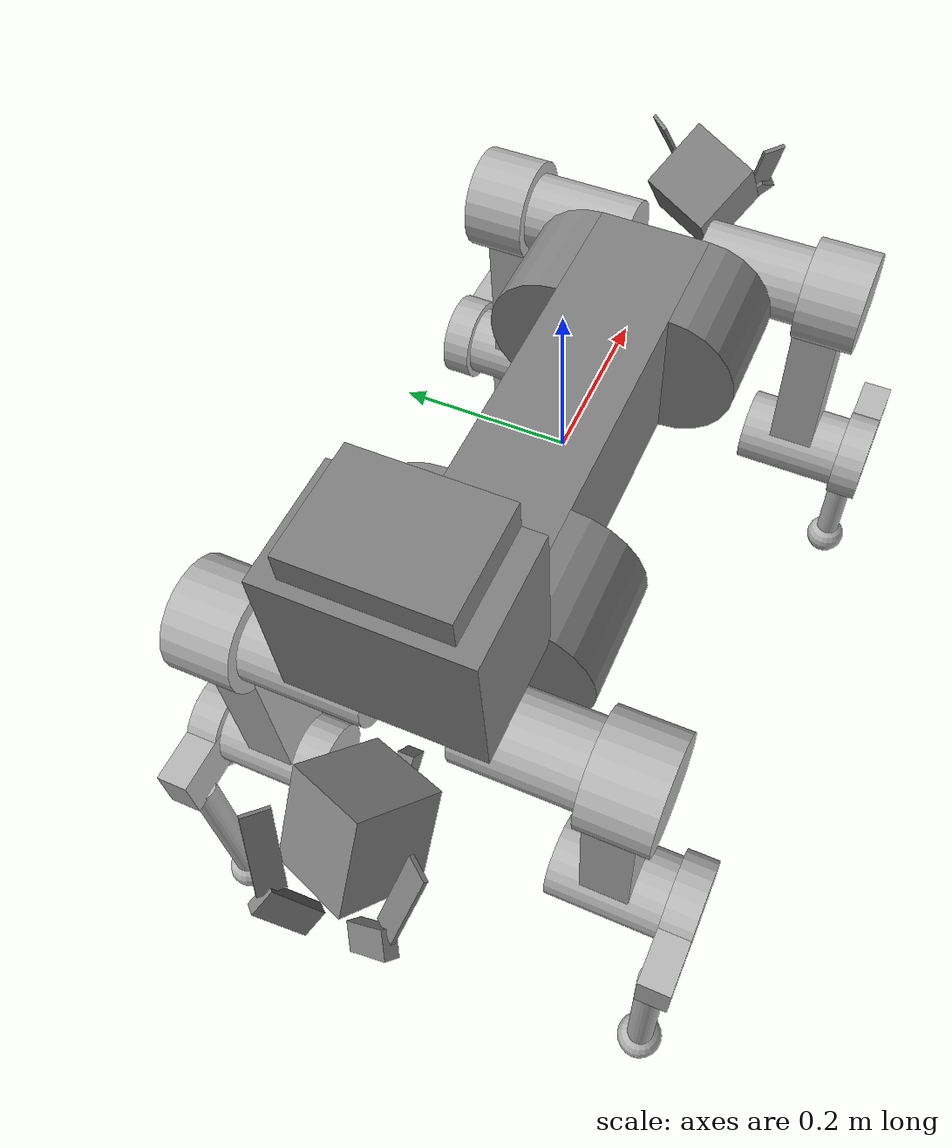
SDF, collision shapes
<?xml version='1.0' encoding='utf-8'?>
<sdf version="1.6">
  <model name="cerberus_anymal_c_sensor_config_1">
    <link name="base">
      <pose>0 0 0 0 -0 0</pose>
      <inertial>
        <pose>-0.02203 -0.000162 0.009216 0 -0 0</pose>
        <mass>29.23832</mass>
        <inertia>
          <ixx>0.236867</ixx>
          <ixy>0.00846724</ixy>
          <ixz>0.0854364</ixz>
          <iyy>2.06849</iyy>
          <iyz>-0.000253399</iyz>
          <izz>2.09006</izz>
        </inertia>
      </inertial>
      <collision name="base_collision">
        <pose>0 0 0 0 -0 0</pose>
        <geometry>
          <box>
            <size>0.58 0.14 0.18</size>
          </box>
        </geometry>
      </collision>
      <collision name="base_collision_1">
        <pose>0.2175 0.07 0 0 1.5708 0</pose>
        <geometry>
          <cylinder>
            <length>0.145</length>
            <radius>0.09</radius>
          </cylinder>
        </geometry>
      </collision>
      <collision name="base_collision_2">
        <pose>-0.2175 0.07 0 0 1.5708 0</pose>
        <geometry>
          <cylinder>
            <length>0.145</length>
            <radius>0.09</radius>
          </cylinder>
        </geometry>
      </collision>
      <collision name="base_collision_3">
        <pose>0.2175 -0.07 0 0 1.5708 0</pose>
        <geometry>
          <cylinder>
            <length>0.145</length>
            <radius>0.09</radius>
          </cylinder>
        </geometry>
      </collision>
      <collision name="base_collision_4">
        <pose>-0.2175 -0.07 0 0 1.5708 0</pose>
        <geometry>
          <cylinder>
            <length>0.145</length>
            <radius>0.09</radius>
          </cylinder>
        </geometry>
      </collision>
      <collision name="base_fixed_joint_lump__alphasense_mesh_collision_5">
        <pose>-0.349598 0 0.235 0 -0 0</pose>
        <geometry>
          <box>
            <size>0.128 0.165 0.098</size>
          </box>
        </geometry>
      </collision>
      <collision name="base_fixed_joint_lump__bpearl_front_collision_6">
        <pose>0.501547 0 -0.010053 -2.85388 -0.54666 -0.517507</pose>
        <geometry>
          <box>
            <size>0.1 0.1 0.11</size>
          </box>
        </geometry>
      </collision>
      <collision name="base_fixed_joint_lump__bpearl_front_protection_bars_collision_collision_7">
        <pose>0.438876 0 -0.07746 3.14159 0.893609 3.14159</pose>
        <geometry>
          <box>
            <size>0.03 0.018 0.1</size>
          </box>
        </geometry>
      </collision>
      <collision name="base_fixed_joint_lump__bpearl_front_protection_bars_collision_collision_8">
        <pose>0.50696 0 -0.118904 1e-06 1.52542 1e-06</pose>
        <geometry>
          <box>
            <size>0.03 0.017 0.068</size>
          </box>
        </geometry>
      </collision>
      <collision name="base_fixed_joint_lump__bpearl_front_protection_bars_collision_collision_9">
        <pose>0.559988 -0.068944 0.007343 -2.68278 -0.125844 -0.83529</pose>
        <geometry>
          <box>
            <size>0.03 0.005 0.1</size>
          </box>
        </geometry>
      </collision>
      <collision name="base_fixed_joint_lump__bpearl_front_protection_bars_collision_collision_10">
        <pose>0.58501 -0.044431 -0.064253 -2.61177 0.516776 -0.491692</pose>
        <geometry>
          <box>
            <size>0.03 0.016 0.068</size>
          </box>
        </geometry>
      </collision>
      <collision name="base_fixed_joint_lump__bpearl_front_protection_bars_collision_collision_11">
        <pose>0.556968 0.071877 0.005228 2.66301 -0.103127 0.880443</pose>
        <geometry>
          <box>
            <size>0.03 0.005 0.1</size>
          </box>
        </geometry>
      </collision>
      <collision name="base_fixed_joint_lump__bpearl_front_protection_bars_collision_collision_12">
        <pose>0.583063 0.046321 -0.065616 2.58142 0.531321 0.5194</pose>
        <geometry>
          <box>
            <size>0.03 0.016 0.068</size>
          </box>
        </geometry>
      </collision>
      <collision name="base_fixed_joint_lump__bpearl_rear_collision_13">
        <pose>-0.501547 -0 -0.010053 -2.85388 -0.54666 2.62409</pose>
        <geometry>
          <box>
            <size>0.1 0.1 0.11</size>
          </box>
        </geometry>
      </collision>
      <collision name="base_fixed_joint_lump__bpearl_rear_protection_bars_collision_collision_14">
        <pose>-0.438876 -0 -0.07746 3.14159 0.893609 -0</pose>
        <geometry>
          <box>
            <size>0.03 0.018 0.1</size>
          </box>
        </geometry>
      </collision>
      <collision name="base_fixed_joint_lump__bpearl_rear_protection_bars_collision_collision_15">
        <pose>-0.50696 -0 -0.118904 1e-06 1.52542 -3.14159</pose>
        <geometry>
          <box>
            <size>0.03 0.017 0.068</size>
          </box>
        </geometry>
      </collision>
      <collision name="base_fixed_joint_lump__bpearl_rear_protection_bars_collision_collision_16">
        <pose>-0.565632 0.062519 0.011295 -2.72553 -0.168473 2.39838</pose>
        <geometry>
          <box>
            <size>0.03 0.005 0.1</size>
          </box>
        </geometry>
      </collision>
      <collision name="base_fixed_joint_lump__bpearl_rear_protection_bars_collision_collision_17">
        <pose>-0.588647 0.04029 -0.061706 -2.67308 0.489917 2.70612</pose>
        <geometry>
          <box>
            <size>0.03 0.016 0.068</size>
          </box>
        </geometry>
      </collision>
      <collision name="base_fixed_joint_lump__bpearl_rear_protection_bars_collision_collision_18">
        <pose>-0.553825 -0.074613 0.003028 2.64433 -0.079552 -2.21655</pose>
        <geometry>
          <box>
            <size>0.03 0.005 0.1</size>
          </box>
        </geometry>
      </collision>
      <collision name="base_fixed_joint_lump__bpearl_rear_protection_bars_collision_collision_19">
        <pose>-0.581038 -0.048084 -0.067034 2.55129 0.546584 -2.59477</pose>
        <geometry>
          <box>
            <size>0.03 0.016 0.068</size>
          </box>
        </geometry>
      </collision>
      <collision name="base_fixed_joint_lump__perception_head_cage_collision_20">
        <pose>-0.355957 0 0.1614 0 -0 0</pose>
        <geometry>
          <box>
            <size>0.14151 0.21544 0.1768</size>
          </box>
        </geometry>
      </collision>
      <collision name="base_fixed_joint_lump__imu_link_collision_21">
        <pose>0.2488 0.00835 0.05128 0 -0 1.5708</pose>
        <geometry>
          <box>
            <size>0.024 0.024 0.01</size>
          </box>
        </geometry>
      </collision>
      <visual name="base_visual">
        <pose>0 0 0 0 -0 0</pose>
        <geometry>
          <mesh>
            <scale>1 1 1</scale>
            <uri>meshes/base.dae</uri>
          </mesh>
        </geometry>
      </visual>
      <visual name="base_fixed_joint_lump__LF_HAA_visual_1">
        <pose>0.2999 0.104 0 2.61799 -0 0</pose>
        <geometry>
          <mesh>
            <scale>1 1 1</scale>
            <uri>meshes/drive.dae</uri>
          </mesh>
        </geometry>
      </visual>
      <visual name="base_fixed_joint_lump__LH_HAA_visual_2">
        <pose>-0.2999 0.104 0 -2.61799 -0 3.14159</pose>
        <geometry>
          <mesh>
            <scale>1 1 1</scale>
            <uri>meshes/drive.dae</uri>
          </mesh>
        </geometry>
      </visual>
      <visual name="base_fixed_joint_lump__RF_HAA_visual_3">
        <pose>0.2999 -0.104 0 -2.61799 0 0</pose>
        <geometry>
          <mesh>
            <scale>1 1 1</scale>
            <uri>meshes/drive.dae</uri>
          </mesh>
        </geometry>
      </visual>
      <visual name="base_fixed_joint_lump__RH_HAA_visual_4">
        <pose>-0.2999 -0.104 0 2.61799 0 3.14159</pose>
        <geometry>
          <mesh>
            <scale>1 1 1</scale>
            <uri>meshes/drive.dae</uri>
          </mesh>
        </geometry>
      </visual>
      <visual name="base_fixed_joint_lump__battery_visual_5">
        <pose>0 0 0 0 -0 0</pose>
        <geometry>
          <mesh>
            <scale>1 1 1</scale>
            <uri>meshes/battery.dae</uri>
          </mesh>
        </geometry>
      </visual>
      <visual name="base_fixed_joint_lump__bottom_shell_visual_6">
        <pose>0 0 0 0 -0 0</pose>
        <geometry>
          <mesh>
            <scale>1 1 1</scale>
            <uri>meshes/bottom_shell.dae</uri>
          </mesh>
        </geometry>
      </visual>
      <visual name="base_fixed_joint_lump__handle_visual_7">
        <pose>0 0 0 0 -0 0</pose>
        <geometry>
          <mesh>
            <scale>1 1 1</scale>
            <uri>meshes/handle.dae</uri>
          </mesh>
        </geometry>
      </visual>
      <visual name="base_fixed_joint_lump__hatch_visual_8">
        <pose>0.116 0 0.073 0 -0 0</pose>
        <geometry>
          <mesh>
            <scale>1 1 1</scale>
            <uri>meshes/hatch.dae</uri>
          </mesh>
        </geometry>
      </visual>
      <visual name="base_fixed_joint_lump__remote_visual_9">
        <pose>0 0 0 0 -0 0</pose>
        <geometry>
          <mesh>
            <scale>1 1 1</scale>
            <uri>meshes/remote.dae</uri>
          </mesh>
        </geometry>
      </visual>
      <visual name="base_fixed_joint_lump__alphasense_mesh_visual_10">
        <pose>-0.364 0 0 0 -0 0</pose>
        <geometry>
          <mesh>
            <scale>0.001 0.001 0.001</scale>
            <uri>meshes/alphasense.stl</uri>
          </mesh>
        </geometry>
        <material>
          <ambient>0.5 0.5 0.5 1</ambient>
          <diffuse>0.5 0.5 0.5 1</diffuse>
          <specular>0.5 0.5 0.5 1</specular>
        </material>
      </visual>
      <visual name="base_fixed_joint_lump__bpearl_front_visual_11">
        <pose>0.47 0 0.035 -2.85388 -0.54666 -0.517507</pose>
        <geometry>
          <mesh>
            <scale>0.001 0.001 0.001</scale>
            <uri>meshes/rslidar_bpearl.stl</uri>
          </mesh>
        </geometry>
        <material>
          <ambient>0.5 0.5 0.5 1</ambient>
          <diffuse>0.5 0.5 0.5 1</diffuse>
          <specular>0.5 0.5 0.5 1</specular>
        </material>
      </visual>
      <visual name="base_fixed_joint_lump__bpearl_front_protection_bars_visual_12">
        <pose>0.414495 0 0 0 0 -3.14159</pose>
        <geometry>
          <mesh>
            <scale>0.001 0.001 0.001</scale>
            <uri>meshes/bpearl_protection_bars.stl</uri>
          </mesh>
        </geometry>
        <material>
          <ambient>0.5 0.5 0.5 1</ambient>
          <diffuse>0.5 0.5 0.5 1</diffuse>
          <specular>0.5 0.5 0.5 1</specular>
        </material>
      </visual>
      <visual name="base_fixed_joint_lump__bpearl_rear_visual_13">
        <pose>-0.47 0 0.035 -2.85388 -0.54666 2.62409</pose>
        <geometry>
          <mesh>
            <scale>0.001 0.001 0.001</scale>
            <uri>meshes/rslidar_bpearl.stl</uri>
          </mesh>
        </geometry>
        <material>
          <ambient>0.5 0.5 0.5 1</ambient>
          <diffuse>0.5 0.5 0.5 1</diffuse>
          <specular>0.5 0.5 0.5 1</specular>
        </material>
      </visual>
      <visual name="base_fixed_joint_lump__bpearl_rear_protection_bars_visual_14">
        <pose>-0.414495 0 0 0 -0 0</pose>
        <geometry>
          <mesh>
            <scale>0.001 0.001 0.001</scale>
            <uri>meshes/bpearl_protection_bars.stl</uri>
          </mesh>
        </geometry>
        <material>
          <ambient>0.5 0.5 0.5 1</ambient>
          <diffuse>0.5 0.5 0.5 1</diffuse>
          <specular>0.5 0.5 0.5 1</specular>
        </material>
      </visual>
      <visual name="base_fixed_joint_lump__perception_head_cage_visual_15">
        <pose>-0.364 0 0 0 -0 0</pose>
        <geometry>
          <mesh>
            <scale>0.001 0.001 0.001</scale>
            <uri>meshes/perception_head.stl</uri>
          </mesh>
        </geometry>
        <material>
          <ambient>0.5 0.5 0.5 1</ambient>
          <diffuse>0.5 0.5 0.5 1</diffuse>
          <specular>0.5 0.5 0.5 1</specular>
        </material>
      </visual>
      <visual name="base_fixed_joint_lump__lidar_visual_16">
        <pose>-0.364 0 0.1422 0 0 -1.5708</pose>
        <geometry>
          <mesh>
            <scale>1 1 1</scale>
            <uri>meshes/lidar.dae</uri>
          </mesh>
        </geometry>
      </visual>
      <visual name="base_fixed_joint_lump__top_shell_visual_17">
        <pose>0 0 0 0 -0 0</pose>
        <geometry>
          <mesh>
            <scale>1 1 1</scale>
            <uri>meshes/top_shell.dae</uri>
          </mesh>
        </geometry>
      </visual>
      <visual name="base_fixed_joint_lump__imu_link_visual_18">
        <pose>0.2488 0.00835 0.05128 0 -0 1.5708</pose>
        <geometry>
          <box>
            <size>0.024 0.024 0.01</size>
          </box>
        </geometry>
      </visual>
      <!-- Sensors -->
      <sensor name="imu_sensor" type="imu">
        <always_on>1</always_on>
        <update_rate>400</update_rate>
        <imu>
                    <enable_orientation>0</enable_orientation>
                    <angular_velocity>
                        <x>
                            <noise type="gaussian">
                                <mean>0</mean>
                                <stddev>0.009</stddev>
                                <bias_mean>0.00075</bias_mean>
                                <bias_stddev>0.005</bias_stddev>
                                <dynamic_bias_stddev>0.00002</dynamic_bias_stddev>
                                <dynamic_bias_correlation_time>400.0</dynamic_bias_correlation_time>
                                <precision>0.00025</precision>
                            </noise>
                        </x>
                        <y>
                            <noise type="gaussian">
                                <mean>0</mean>
                                <stddev>0.009</stddev>
                                <bias_mean>0.00075</bias_mean>
                                <bias_stddev>0.005</bias_stddev>
                                <dynamic_bias_stddev>0.00002</dynamic_bias_stddev>
                                <dynamic_bias_correlation_time>400.0</dynamic_bias_correlation_time>
                                <precision>0.00025</precision>
                            </noise>
                        </y>
                        <z>
                            <noise type="gaussian">
                                <mean>0</mean>
                                <stddev>0.009</stddev>
                                <bias_mean>0.00075</bias_mean>
                                <bias_stddev>0.005</bias_stddev>
                                <dynamic_bias_stddev>0.00002</dynamic_bias_stddev>
                                <dynamic_bias_correlation_time>400.0</dynamic_bias_correlation_time>
                                <precision>0.00025</precision>
                            </noise>
                        </z>
                    </angular_velocity>
                    <linear_acceleration>
                        <x>
                            <noise type="gaussian">
                                <mean>0</mean>
                                <stddev>0.021</stddev>
                                <bias_mean>0.05</bias_mean>
                                <bias_stddev>0.0075</bias_stddev>
                                <dynamic_bias_stddev>0.000375</dynamic_bias_stddev>
                                <dynamic_bias_correlation_time>175.0</dynamic_bias_correlation_time>
                                <precision>0.005</precision>
                            </noise>
                        </x>
                        <y>
                            <noise type="gaussian">
                                <mean>0</mean>
                                <stddev>0.021</stddev>
                                <bias_mean>0.05</bias_mean>
                                <bias_stddev>0.0075</bias_stddev>
                                <dynamic_bias_stddev>0.000375</dynamic_bias_stddev>
                                <dynamic_bias_correlation_time>175.0</dynamic_bias_correlation_time>
                                <precision>0.005</precision>
                            </noise>
                        </y>
                        <z>
                            <noise type="gaussian">
                                <mean>0</mean>
                                <stddev>0.021</stddev>
                                <bias_mean>0.05</bias_mean>
                                <bias_stddev>0.0075</bias_stddev>
                                <dynamic_bias_stddev>0.000375</dynamic_bias_stddev>
                                <dynamic_bias_correlation_time>175.0</dynamic_bias_correlation_time>
                                <precision>0.005</precision>
                            </noise>
                        </z>
                    </linear_acceleration>
                </imu>
        <pose frame="">0.249 0.008 0.046 0.000 -0.000 1.571</pose>
      </sensor>
      <sensor name="perception_head_imu_sensor" type="imu">
        <always_on>1</always_on>
        <update_rate>200</update_rate>
        <imu>
                    <enable_orientation>0</enable_orientation>
                    <angular_velocity>
                        <x>
                            <noise type="gaussian">
                                <mean>0</mean>
                                <stddev>0.009</stddev>
                                <bias_mean>0.00075</bias_mean>
                                <bias_stddev>0.005</bias_stddev>
                                <dynamic_bias_stddev>0.00002</dynamic_bias_stddev>
                                <dynamic_bias_correlation_time>400.0</dynamic_bias_correlation_time>
                                <precision>0.00025</precision>
                            </noise>
                        </x>
                        <y>
                            <noise type="gaussian">
                                <mean>0</mean>
                                <stddev>0.009</stddev>
                                <bias_mean>0.00075</bias_mean>
                                <bias_stddev>0.005</bias_stddev>
                                <dynamic_bias_stddev>0.00002</dynamic_bias_stddev>
                                <dynamic_bias_correlation_time>400.0</dynamic_bias_correlation_time>
                                <precision>0.00025</precision>
                            </noise>
                        </y>
                        <z>
                            <noise type="gaussian">
                                <mean>0</mean>
                                <stddev>0.009</stddev>
                                <bias_mean>0.00075</bias_mean>
                                <bias_stddev>0.005</bias_stddev>
                                <dynamic_bias_stddev>0.00002</dynamic_bias_stddev>
                                <dynamic_bias_correlation_time>400.0</dynamic_bias_correlation_time>
                                <precision>0.00025</precision>
                            </noise>
                        </z>
                    </angular_velocity>
                    <linear_acceleration>
                        <x>
                            <noise type="gaussian">
                                <mean>0</mean>
                                <stddev>0.021</stddev>
                                <bias_mean>0.05</bias_mean>
                                <bias_stddev>0.0075</bias_stddev>
                                <dynamic_bias_stddev>0.000375</dynamic_bias_stddev>
                                <dynamic_bias_correlation_time>175.0</dynamic_bias_correlation_time>
                                <precision>0.005</precision>
                            </noise>
                        </x>
                        <y>
                            <noise type="gaussian">
                                <mean>0</mean>
                                <stddev>0.021</stddev>
                                <bias_mean>0.05</bias_mean>
                                <bias_stddev>0.0075</bias_stddev>
                                <dynamic_bias_stddev>0.000375</dynamic_bias_stddev>
                                <dynamic_bias_correlation_time>175.0</dynamic_bias_correlation_time>
                                <precision>0.005</precision>
                            </noise>
                        </y>
                        <z>
                            <noise type="gaussian">
                                <mean>0</mean>
                                <stddev>0.021</stddev>
                                <bias_mean>0.05</bias_mean>
                                <bias_stddev>0.0075</bias_stddev>
                                <dynamic_bias_stddev>0.000375</dynamic_bias_stddev>
                                <dynamic_bias_correlation_time>175.0</dynamic_bias_correlation_time>
                                <precision>0.005</precision>
                            </noise>
                        </z>
                    </linear_acceleration>
                </imu>
        <pose frame="">-0.327 -0.005 0.206 0.000 0.000 -1.571</pose>
      </sensor>
      <sensor name="front_laser" type="gpu_lidar">
        <visualize>0</visualize>
        <update_rate>10</update_rate>
        <lidar>
          <scan>
            <horizontal>
              <samples>1800</samples>
              <resolution>1.0</resolution>
              <min_angle>-3.14159</min_angle>
              <max_angle>3.14159</max_angle>
            </horizontal>
            <vertical>
              <samples>16</samples>
              <resolution>1</resolution>
              <min_angle>-0.261799</min_angle>
              <max_angle>0.261799</max_angle>
            </vertical>
          </scan>
          <range>
            <min>0.05</min>
            <max>100</max>
            <resolution>0.01</resolution>
          </range>
          <noise>
            <type>gaussian</type>
            <mean>0</mean>
            <stddev>0.01</stddev>
          </noise>
        </lidar>
        <pose frame="">-0.364 0.000 0.142 0.000 0.000 -1.571</pose>
      </sensor>
      <sensor name="front_bpearl" type="gpu_lidar">
        <visualize>0</visualize>
        <update_rate>10</update_rate>
        <lidar>
          <scan>
            <horizontal>
              <samples>440</samples>
              <resolution>1</resolution>
              <min_angle>-3.14159</min_angle>
              <max_angle>3.14159</max_angle>
            </horizontal>
            <vertical>
              <samples>32</samples>
              <resolution>1</resolution>
              <min_angle>0.040360739</min_angle>
              <max_angle>1.562069681</max_angle>
            </vertical>
          </scan>
          <range>
            <min>0.3</min>
            <max>31</max>
            <resolution>0.001</resolution>
          </range>
          <noise>
            <type>gaussian</type>
            <mean>0</mean>
            <stddev>0.008</stddev>
          </noise>
        </lidar>
        <pose frame="">0.524 0.000 -0.042 -2.576 0.245 -1.936</pose>
      </sensor>
      <sensor name="rear_bpearl" type="gpu_lidar">
        <visualize>0</visualize>
        <update_rate>10</update_rate>
        <lidar>
          <scan>
            <horizontal>
              <samples>440</samples>
              <resolution>1</resolution>
              <min_angle>-3.14159</min_angle>
              <max_angle>3.14159</max_angle>
            </horizontal>
            <vertical>
              <samples>32</samples>
              <resolution>1</resolution>
              <min_angle>0.040360739</min_angle>
              <max_angle>1.562069681</max_angle>
            </vertical>
          </scan>
          <range>
            <min>0.3</min>
            <max>31</max>
            <resolution>0.001</resolution>
          </range>
          <noise>
            <type>gaussian</type>
            <mean>0</mean>
            <stddev>0.008</stddev>
          </noise>
        </lidar>
        <pose frame="">-0.524 -0.000 -0.042 -2.576 0.245 1.206</pose>
      </sensor>
      <sensor name="camera_0" type="camera">
        <always_on>1</always_on>
        <update_rate>20</update_rate>
        <pose frame="">-0.400 -0.050 0.229 -0.006 0.011 3.133</pose>
        <camera name="camera_0">
          <horizontal_fov>2.19911</horizontal_fov>
          <lens>
            <intrinsics>
              <!-- fx = fy = width / ( 2 * tan (hfov / 2 ) ) -->
              <fx>183.43</fx>
              <fy>183.43</fy>
              <!-- cx = ( width + 1 ) / 2 -->
              <cx>360.5</cx>
              <!-- cy = ( height + 1 ) / 2 -->
              <cy>270.5</cy>
              <s>0</s>
            </intrinsics>
          </lens>
          <image>
            <width>720</width>
            <height>540</height>
          </image>
          <clip>
            <near>0.02</near>
            <far>100</far>
          </clip>
            <noise>
            <type>gaussian</type>
              <mean>0</mean>
              <stddev>0.007</stddev>
            </noise>
        </camera>
      </sensor>
      <sensor name="camera_1" type="camera">
        <always_on>1</always_on>
        <update_rate>20</update_rate>
        <pose frame="">-0.400 0.049 0.229 -0.006 0.0 3.139</pose>
        <camera name="camera_1">
          <horizontal_fov>2.19911</horizontal_fov>
          <lens>
            <intrinsics>
              <!-- fx = fy = width / ( 2 * tan (hfov / 2 ) ) -->
              <fx>183.43</fx>
              <fy>183.43</fy>
              <!-- cx = ( width + 1 ) / 2 -->
              <cx>360.5</cx>
              <!-- cy = ( height + 1 ) / 2 -->
              <cy>270.5</cy>
              <s>0</s>
            </intrinsics>
          </lens>
          <image>
            <width>728</width>
            <height>544</height>
          </image>
          <clip>
            <near>0.02</near>
            <far>100</far>
          </clip>
            <noise>
            <type>gaussian</type>
              <mean>0</mean>
              <stddev>0.007</stddev>
            </noise>
        </camera>
      </sensor>
      <sensor name="camera_2" type="camera">
        <always_on>1</always_on>
        <update_rate>20</update_rate>
        <pose frame="">-0.379 -0.050 0.265 -0.009 -1.572 -0.004</pose>
        <camera name="camera_2">
          <horizontal_fov>2.19911</horizontal_fov>
          <lens>
            <intrinsics>
              <!-- fx = fy = width / ( 2 * tan (hfov / 2 ) ) -->
              <fx>183.43</fx>
              <fy>183.43</fy>
              <!-- cx = ( width + 1 ) / 2 -->
              <cx>360.5</cx>
              <!-- cy = ( height + 1 ) / 2 -->
              <cy>270.5</cy>
              <s>0</s>
            </intrinsics>
          </lens>
          <image>
            <width>720</width>
            <height>540</height>
          </image>
          <clip>
            <near>0.02</near>
            <far>100</far>
          </clip>
            <noise>
            <type>gaussian</type>
              <mean>0</mean>
              <stddev>0.007</stddev>
            </noise>
        </camera>
      </sensor>
      <sensor name="camera_3" type="camera">
        <always_on>1</always_on>
        <update_rate>20</update_rate>
        <pose frame="">-0.348 -0.073 0.237 0.004 -0.172 -1.575</pose>
        <camera name="camera_3">
          <horizontal_fov>2.19911</horizontal_fov>
          <lens>
            <intrinsics>
              <!-- fx = fy = width / ( 2 * tan (hfov / 2 ) ) -->
              <fx>183.43</fx>
              <fy>183.43</fy>
              <!-- cx = ( width + 1 ) / 2 -->
              <cx>360.5</cx>
              <!-- cy = ( height + 1 ) / 2 -->
              <cy>270.5</cy>
              <s>0</s>
            </intrinsics>
          </lens>
          <image>
            <width>720</width>
            <height>540</height>
          </image>
          <clip>
            <near>0.02</near>
            <far>100</far>
          </clip>
            <noise>
            <type>gaussian</type>
              <mean>0</mean>
              <stddev>0.007</stddev>
            </noise>
        </camera>
      </sensor>
      <sensor name="camera_4" type="camera">
        <always_on>1</always_on>
        <update_rate>20</update_rate>
        <pose frame="">-0.399 -0.000 0.228 -0.009 -0.002 3.136</pose>
        <camera name="camera_4">
          <horizontal_fov>2.19911</horizontal_fov>
          <lens>
            <intrinsics>
              <!-- fx = fy = width / ( 2 * tan (hfov / 2 ) ) -->
              <fx>183.43</fx>
              <fy>183.43</fy>
              <!-- cx = ( width + 1 ) / 2 -->
              <cx>360.5</cx>
              <!-- cy = ( height + 1 ) / 2 -->
              <cy>270.5</cy>
              <s>0</s>
            </intrinsics>
          </lens>
          <image>
            <width>720</width>
            <height>540</height>
          </image>
          <clip>
            <near>0.02</near>
            <far>100</far>
          </clip>
            <noise>
            <type>gaussian</type>
              <mean>0</mean>
              <stddev>0.007</stddev>
            </noise>
        </camera>
      </sensor>
      <sensor name="camera_5" type="camera">
        <always_on>1</always_on>
        <update_rate>20</update_rate>
        <pose frame="">-0.347 0.072 0.236 -0.012 -0.171 1.569</pose>
        <camera name="camera_5">
          <horizontal_fov>2.19911</horizontal_fov>
          <lens>
            <intrinsics>
              <!-- fx = fy = width / ( 2 * tan (hfov / 2 ) ) -->
              <fx>183.43</fx>
              <fy>183.43</fy>
              <!-- cx = ( width + 1 ) / 2 -->
              <cx>360.5</cx>
              <!-- cy = ( height + 1 ) / 2 -->
              <cy>270.5</cy>
              <s>0</s>
            </intrinsics>
          </lens>
          <image>
            <width>720</width>
            <height>540</height>
          </image>
          <clip>
            <near>0.02</near>
            <far>100</far>
          </clip>
            <noise>
            <type>gaussian</type>
              <mean>0</mean>
              <stddev>0.007</stddev>
            </noise>
        </camera>
      </sensor>
      <sensor name="camera_6" type="camera">
        <always_on>1</always_on>
        <update_rate>20</update_rate>
        <pose frame="">-0.379 0.050 0.265 -0.009 -1.572 -0.004</pose>
        <camera name="camera_6">
          <horizontal_fov>2.19911</horizontal_fov>
          <lens>
            <intrinsics>
              <!-- fx = fy = width / ( 2 * tan (hfov / 2 ) ) -->
              <fx>183.43</fx>
              <fy>183.43</fy>
              <!-- cx = ( width + 1 ) / 2 -->
              <cx>360.5</cx>
              <!-- cy = ( height + 1 ) / 2 -->
              <cy>270.5</cy>
              <s>0</s>
            </intrinsics>
          </lens>
          <image>
            <width>720</width>
            <height>540</height>
          </image>
          <clip>
            <near>0.02</near>
            <far>100</far>
          </clip>
            <noise>
            <type>gaussian</type>
              <mean>0</mean>
              <stddev>0.007</stddev>
            </noise>
        </camera>
      </sensor>
      <!-- Lights -->
      <light name="light_up" type="spot">
        <pose frame="">-0.332 0.0 0.28 0.0 3.141 0.0</pose>
        <attenuation>
          <range>50</range>
          <linear>0</linear>
          <constant>0.1</constant>
          <quadratic>0.0025</quadratic>
        </attenuation>
        <diffuse>0.8 0.8 0.5 1</diffuse>
        <specular>0.8 0.8 0.5 1</specular>
        <spot>
          <inner_angle>1.2</inner_angle>
          <outer_angle>1.3</outer_angle>
          <falloff>1</falloff>
        </spot>
        <direction>0 0 1</direction>
      </light>
      <light name="light_forward" type="spot">
        <pose frame="">-0.41 0.0 0.265 0.0 1.57 0.0</pose>
        <attenuation>
          <range>50</range>
          <linear>0</linear>
          <constant>0.1</constant>
          <quadratic>0.0025</quadratic>
        </attenuation>
        <diffuse>0.8 0.8 0.5 1</diffuse>
        <specular>0.8 0.8 0.5 1</specular>
        <spot>
          <inner_angle>1.2</inner_angle>
          <outer_angle>1.3</outer_angle>
          <falloff>1</falloff>
        </spot>
        <direction>0 0 1</direction>
      </light>
      <light name="light_left" type="spot">
        <pose frame="">-0.348 -0.077 0.273 1.743 0.004 3.138</pose>
        <attenuation>
          <range>50</range>
          <linear>0</linear>
          <constant>0.1</constant>
          <quadratic>0.0025</quadratic>
        </attenuation>
        <diffuse>0.8 0.8 0.5 1</diffuse>
        <specular>0.8 0.8 0.5 1</specular>
        <spot>
          <inner_angle>1.2</inner_angle>
          <outer_angle>1.3</outer_angle>
          <falloff>1</falloff>
        </spot>
        <direction>0 0 1</direction>
      </light>
      <light name="light_right" type="spot">
        <pose frame="">-0.347 0.076 0.272 1.742 -0.011 -0.003</pose>
        <attenuation>
          <range>50</range>
          <linear>0</linear>
          <constant>0.1</constant>
          <quadratic>0.0025</quadratic>
        </attenuation>
        <diffuse>0.8 0.8 0.5 1</diffuse>
        <specular>0.8 0.8 0.5 1</specular>
        <spot>
          <inner_angle>1.2</inner_angle>
          <outer_angle>1.3</outer_angle>
          <falloff>1</falloff>
        </spot>
        <direction>0 0 1</direction>
      </light>
    </link>
    <link name="LF_HIP">
      <pose>0.2999 0.104 0 2.61799 -0 0</pose>
      <inertial>
        <pose>0.056661 -0.015294 -0.008298 0 -0 0</pose>
        <mass>2.781</mass>
        <inertia>
          <ixx>0.00329553</ixx>
          <ixy>-1.03882e-05</ixy>
          <ixz>0.000107062</ixz>
          <iyy>0.00504435</iyy>
          <iyz>-0.000319492</iyz>
          <izz>0.0057269</izz>
        </inertia>
      </inertial>
      <collision name="LF_HIP_fixed_joint_lump__LF_HFE_collision">
        <pose>0.0599 -0.01196 -0.006905 -3.14159 -1.0472 -1.5708</pose>
        <geometry>
          <cylinder>
            <length>0.14</length>
            <radius>0.05</radius>
          </cylinder>
        </geometry>
      </collision>
      <visual name="LF_HIP_fixed_joint_lump__LF_hip_fixed_visual">
        <pose>0 0 0 -2.61799 0 0</pose>
        <geometry>
          <mesh>
            <scale>1 1 1</scale>
            <uri>meshes/hip_l.dae</uri>
          </mesh>
        </geometry>
      </visual>
      <visual name="LF_HIP_fixed_joint_lump__LF_HFE_visual_1">
        <pose>0.0599 -0.072582 -0.041905 -3.14159 0.523599 -1.5708</pose>
        <geometry>
          <mesh>
            <scale>1 1 1</scale>
            <uri>meshes/drive.dae</uri>
          </mesh>
        </geometry>
      </visual>
    </link>
    <joint name="LF_HAA" type="revolute">
      <child>LF_HIP</child>
      <parent>base</parent>
      <axis>
        <xyz>1 0 0</xyz>
        <limit>
          <lower>-0.72</lower>
          <upper>0.49</upper>
          <effort>80</effort>
          <velocity>7.5</velocity>
        </limit>
        <dynamics>
          <damping>0</damping>
          <friction>0</friction>
          <spring_reference>0</spring_reference>
          <spring_stiffness>0</spring_stiffness>
        </dynamics>
        <use_parent_model_frame>0</use_parent_model_frame>
      </axis>
    </joint>
    <link name="LF_THIGH">
      <pose>0.3598 0.18781 0 0 -0 1.5708</pose>
      <inertial>
        <pose>0.030815 4.6e-05 -0.245696 0 -0 0</pose>
        <mass>3.071</mass>
        <inertia>
          <ixx>0.0295638</ixx>
          <ixy>4.42919e-05</ixy>
          <ixz>0.00414243</ixz>
          <iyy>0.029904</iyy>
          <iyz>9.448e-05</iyz>
          <izz>0.00486108</izz>
        </inertia>
      </inertial>
      <collision name="LF_THIGH_fixed_joint_lump__LF_thigh_fixed_collision">
        <pose>0.04 0 0 1.5708 0 -1.5708</pose>
        <geometry>
          <cylinder>
            <length>0.08</length>
            <radius>0.065</radius>
          </cylinder>
        </geometry>
      </collision>
      <collision name="LF_THIGH_fixed_joint_lump__LF_thigh_fixed_collision_1">
        <pose>0.03 0 -0.141314 0 0 -1.5708</pose>
        <geometry>
          <box>
            <size>0.075 0.06 0.282627</size>
          </box>
        </geometry>
      </collision>
      <collision name="LF_THIGH_fixed_joint_lump__LF_KFE_collision_2">
        <pose>0.0303 0 -0.285 0 1.5708 0</pose>
        <geometry>
          <cylinder>
            <length>0.14</length>
            <radius>0.05</radius>
          </cylinder>
        </geometry>
      </collision>
      <visual name="LF_THIGH_fixed_joint_lump__LF_thigh_fixed_visual">
        <pose>0 0 0 0 0 -1.5708</pose>
        <geometry>
          <mesh>
            <scale>1 1 1</scale>
            <uri>meshes/thigh.dae</uri>
          </mesh>
        </geometry>
      </visual>
      <visual name="LF_THIGH_fixed_joint_lump__LF_KFE_visual_1">
        <pose>0.1003 0 -0.285 0 -0 0</pose>
        <geometry>
          <mesh>
            <scale>1 1 1</scale>
            <uri>meshes/drive.dae</uri>
          </mesh>
        </geometry>
      </visual>
    </link>
    <joint name="LF_HFE" type="revolute">
      <child>LF_THIGH</child>
      <parent>LF_HIP</parent>
      <axis>
        <xyz>1 0 0</xyz>
        <limit>
          <lower>-9.42478</lower>
          <upper>9.42478</upper>
          <effort>80</effort>
          <velocity>7.5</velocity>
        </limit>
        <dynamics>
          <damping>0</damping>
          <friction>0</friction>
          <spring_reference>0</spring_reference>
          <spring_stiffness>0</spring_stiffness>
        </dynamics>
        <use_parent_model_frame>0</use_parent_model_frame>
      </axis>
    </joint>
    <link name="LF_SHANK">
      <pose>0.3598 0.28811 -0.285 0 -0 1.5708</pose>
      <inertial>
        <pose>0.005462 -0.061253 -0.08066 0 -0 0</pose>
        <mass>0.58842</mass>
        <inertia>
          <ixx>0.0101611</ixx>
          <ixy>-5.35713e-05</ixy>
          <ixz>-2.26604e-05</ixz>
          <iyy>0.00881038</iyy>
          <iyz>-0.00181935</iyz>
          <izz>0.00154978</izz>
        </inertia>
      </inertial>
      <collision name="LF_SHANK_fixed_joint_lump__LF_shank_fixed_collision">
        <pose>0.02 0 0 1.5708 0 -1.5708</pose>
        <geometry>
          <cylinder>
            <length>0.04</length>
            <radius>0.06</radius>
          </cylinder>
        </geometry>
      </collision>
      <collision name="LF_SHANK_fixed_joint_lump__LF_shank_fixed_collision_1">
        <pose>0.02 -0.057499 0 1.5708 0 -1.5708</pose>
        <geometry>
          <box>
            <size>0.114998 0.0675 0.04</size>
          </box>
        </geometry>
      </collision>
      <collision name="LF_SHANK_fixed_joint_lump__LF_FOOT_collision_2">
        <pose>0.01305 -0.08795 -0.168985 0 0 -1.5708</pose>
        <geometry>
          <cylinder>
            <length>0.282504</length>
            <radius>0.0175</radius>
          </cylinder>
        </geometry>
      </collision>
      <collision name="LF_SHANK_fixed_joint_lump__LF_FOOT_collision_3">
        <pose>0.01305 -0.08795 -0.31547 0 0 -1.5708</pose>
        <geometry>
          <sphere>
            <radius>0.03</radius>
          </sphere>
        </geometry>
      </collision>
      <visual name="LF_SHANK_fixed_joint_lump__LF_shank_fixed_visual">
        <pose>0 0 0 0 0 -1.5708</pose>
        <geometry>
          <mesh>
            <scale>1 1 1</scale>
            <uri>meshes/shank_l.dae</uri>
          </mesh>
        </geometry>
      </visual>
      <visual name="LF_SHANK_fixed_joint_lump__LF_FOOT_visual_1">
        <pose>0.01305 -0.08795 -0.33797 0 0 -2.35619</pose>
        <geometry>
          <mesh>
            <scale>1 1 1</scale>
            <uri>meshes/foot.dae</uri>
          </mesh>
        </geometry>
      </visual>
    </link>
    <joint name="LF_KFE" type="revolute">
      <child>LF_SHANK</child>
      <parent>LF_THIGH</parent>
      <axis>
        <xyz>1 0 0</xyz>
        <limit>
          <lower>-9.42478</lower>
          <upper>9.42478</upper>
          <effort>80</effort>
          <velocity>7.5</velocity>
        </limit>
        <dynamics>
          <damping>0</damping>
          <friction>0</friction>
          <spring_reference>0</spring_reference>
          <spring_stiffness>0</spring_stiffness>
        </dynamics>
        <use_parent_model_frame>0</use_parent_model_frame>
      </axis>
    </joint>
    <link name="LH_HIP">
      <pose>-0.2999 0.104 0 -2.61799 -0 3.14159</pose>
      <inertial>
        <pose>0.056763 0.015294 -0.008298 0 -0 0</pose>
        <mass>2.781</mass>
        <inertia>
          <ixx>0.00329553</ixx>
          <ixy>-1.10053e-05</ixy>
          <ixz>-0.000109121</ixz>
          <iyy>0.00504617</iyy>
          <iyz>0.000319492</iyz>
          <izz>0.00572872</izz>
        </inertia>
      </inertial>
      <collision name="LH_HIP_fixed_joint_lump__LH_HFE_collision">
        <pose>0.0599 0.01196 -0.006905 -3.14159 -1.0472 1.5708</pose>
        <geometry>
          <cylinder>
            <length>0.14</length>
            <radius>0.05</radius>
          </cylinder>
        </geometry>
      </collision>
      <visual name="LH_HIP_fixed_joint_lump__LH_hip_fixed_visual">
        <pose>0 0 0 2.61799 0 -0</pose>
        <geometry>
          <mesh>
            <scale>1 1 1</scale>
            <uri>meshes/hip_r.dae</uri>
          </mesh>
        </geometry>
      </visual>
      <visual name="LH_HIP_fixed_joint_lump__LH_HFE_visual_1">
        <pose>0.0599 0.072582 -0.041905 -3.14159 0.523599 1.5708</pose>
        <geometry>
          <mesh>
            <scale>1 1 1</scale>
            <uri>meshes/drive.dae</uri>
          </mesh>
        </geometry>
      </visual>
    </link>
    <joint name="LH_HAA" type="revolute">
      <child>LH_HIP</child>
      <parent>base</parent>
      <axis>
        <xyz>-1 0 0</xyz>
        <limit>
          <lower>-0.72</lower>
          <upper>0.49</upper>
          <effort>80</effort>
          <velocity>7.5</velocity>
        </limit>
        <dynamics>
          <damping>0</damping>
          <friction>0</friction>
          <spring_reference>0</spring_reference>
          <spring_stiffness>0</spring_stiffness>
        </dynamics>
        <use_parent_model_frame>0</use_parent_model_frame>
      </axis>
    </joint>
    <link name="LH_THIGH">
      <pose>-0.3598 0.18781 0 0 0 1.5708</pose>
      <inertial>
        <pose>0.030815 4.6e-05 -0.245696 0 -0 0</pose>
        <mass>3.071</mass>
        <inertia>
          <ixx>0.0295638</ixx>
          <ixy>4.43959e-05</ixy>
          <ixz>0.00414243</ixz>
          <iyy>0.029904</iyy>
          <iyz>0.000114794</iyz>
          <izz>0.00486108</izz>
        </inertia>
      </inertial>
      <collision name="LH_THIGH_fixed_joint_lump__LH_thigh_fixed_collision">
        <pose>0.04 0 0 1.5708 0 -1.5708</pose>
        <geometry>
          <cylinder>
            <length>0.08</length>
            <radius>0.065</radius>
          </cylinder>
        </geometry>
      </collision>
      <collision name="LH_THIGH_fixed_joint_lump__LH_thigh_fixed_collision_1">
        <pose>0.03 0 -0.141314 0 0 -1.5708</pose>
        <geometry>
          <box>
            <size>0.075 0.06 0.282627</size>
          </box>
        </geometry>
      </collision>
      <collision name="LH_THIGH_fixed_joint_lump__LH_KFE_collision_2">
        <pose>0.0303 0 -0.285 0 1.5708 0</pose>
        <geometry>
          <cylinder>
            <length>0.14</length>
            <radius>0.05</radius>
          </cylinder>
        </geometry>
      </collision>
      <visual name="LH_THIGH_fixed_joint_lump__LH_thigh_fixed_visual">
        <pose>0 0 0 0 0 -1.5708</pose>
        <geometry>
          <mesh>
            <scale>1 1 1</scale>
            <uri>meshes/thigh.dae</uri>
          </mesh>
        </geometry>
      </visual>
      <visual name="LH_THIGH_fixed_joint_lump__LH_KFE_visual_1">
        <pose>0.1003 0 -0.285 0 -0 0</pose>
        <geometry>
          <mesh>
            <scale>1 1 1</scale>
            <uri>meshes/drive.dae</uri>
          </mesh>
        </geometry>
      </visual>
    </link>
    <joint name="LH_HFE" type="revolute">
      <child>LH_THIGH</child>
      <parent>LH_HIP</parent>
      <axis>
        <xyz>1 0 0</xyz>
        <limit>
          <lower>-9.42478</lower>
          <upper>9.42478</upper>
          <effort>80</effort>
          <velocity>7.5</velocity>
        </limit>
        <dynamics>
          <damping>0</damping>
          <friction>0</friction>
          <spring_reference>0</spring_reference>
          <spring_stiffness>0</spring_stiffness>
        </dynamics>
        <use_parent_model_frame>0</use_parent_model_frame>
      </axis>
    </joint>
    <link name="LH_SHANK">
      <pose>-0.3598 0.28811 -0.285 0 0 1.5708</pose>
      <inertial>
        <pose>0.005462 0.061253 -0.08066 0 -0 0</pose>
        <mass>0.58842</mass>
        <inertia>
          <ixx>0.0101611</ixx>
          <ixy>5.35713e-05</ixy>
          <ixz>-2.26604e-05</ixz>
          <iyy>0.00881038</iyy>
          <iyz>0.00181935</iyz>
          <izz>0.00154978</izz>
        </inertia>
      </inertial>
      <collision name="LH_SHANK_fixed_joint_lump__LH_shank_fixed_collision">
        <pose>0.02 0 0 1.5708 0 -1.5708</pose>
        <geometry>
          <cylinder>
            <length>0.04</length>
            <radius>0.06</radius>
          </cylinder>
        </geometry>
      </collision>
      <collision name="LH_SHANK_fixed_joint_lump__LH_shank_fixed_collision_1">
        <pose>0.02 0.057499 0 1.5708 0 -1.5708</pose>
        <geometry>
          <box>
            <size>0.114998 0.0675 0.04</size>
          </box>
        </geometry>
      </collision>
      <collision name="LH_SHANK_fixed_joint_lump__LH_FOOT_collision_2">
        <pose>0.01305 0.08795 -0.168985 0 0 -1.5708</pose>
        <geometry>
          <cylinder>
            <length>0.282504</length>
            <radius>0.0175</radius>
          </cylinder>
        </geometry>
      </collision>
      <collision name="LH_SHANK_fixed_joint_lump__LH_FOOT_collision_3">
        <pose>0.01305 0.08795 -0.31547 0 0 -1.5708</pose>
        <geometry>
          <sphere>
            <radius>0.03</radius>
          </sphere>
        </geometry>
      </collision>
      <visual name="LH_SHANK_fixed_joint_lump__LH_shank_fixed_visual">
        <pose>0 0 0 0 -0 1.5708</pose>
        <geometry>
          <mesh>
            <scale>1 1 1</scale>
            <uri>meshes/shank_r.dae</uri>
          </mesh>
        </geometry>
      </visual>
      <visual name="LH_SHANK_fixed_joint_lump__LH_FOOT_visual_1">
        <pose>0.01305 0.08795 -0.33797 0 -0 2.35619</pose>
        <geometry>
          <mesh>
            <scale>1 1 1</scale>
            <uri>meshes/foot.dae</uri>
          </mesh>
        </geometry>
      </visual>
    </link>
    <joint name="LH_KFE" type="revolute">
      <child>LH_SHANK</child>
      <parent>LH_THIGH</parent>
      <axis>
        <xyz>1 0 0</xyz>
        <limit>
          <lower>-9.42478</lower>
          <upper>9.42478</upper>
          <effort>80</effort>
          <velocity>7.5</velocity>
        </limit>
        <dynamics>
          <damping>0</damping>
          <friction>0</friction>
          <spring_reference>0</spring_reference>
          <spring_stiffness>0</spring_stiffness>
        </dynamics>
        <use_parent_model_frame>0</use_parent_model_frame>
      </axis>
    </joint>
    <link name="RF_HIP">
      <pose>0.2999 -0.104 0 -2.61799 0 0</pose>
      <inertial>
        <pose>0.056763 0.015294 -0.008298 0 -0 0</pose>
        <mass>2.781</mass>
        <inertia>
          <ixx>0.00329553</ixx>
          <ixy>-1.10053e-05</ixy>
          <ixz>-0.000109121</ixz>
          <iyy>0.00504617</iyy>
          <iyz>0.000319492</iyz>
          <izz>0.00572872</izz>
        </inertia>
      </inertial>
      <collision name="RF_HIP_fixed_joint_lump__RF_HFE_collision">
        <pose>0.0599 0.01196 -0.006905 3.14159 -1.0472 1.5708</pose>
        <geometry>
          <cylinder>
            <length>0.14</length>
            <radius>0.05</radius>
          </cylinder>
        </geometry>
      </collision>
      <visual name="RF_HIP_fixed_joint_lump__RF_hip_fixed_visual">
        <pose>0 0 0 2.61799 -0 0</pose>
        <geometry>
          <mesh>
            <scale>1 1 1</scale>
            <uri>meshes/hip_r.dae</uri>
          </mesh>
        </geometry>
      </visual>
      <visual name="RF_HIP_fixed_joint_lump__RF_HFE_visual_1">
        <pose>0.0599 0.072582 -0.041905 3.14159 0.523599 1.5708</pose>
        <geometry>
          <mesh>
            <scale>1 1 1</scale>
            <uri>meshes/drive.dae</uri>
          </mesh>
        </geometry>
      </visual>
    </link>
    <joint name="RF_HAA" type="revolute">
      <child>RF_HIP</child>
      <parent>base</parent>
      <axis>
        <xyz>1 0 0</xyz>
        <limit>
          <lower>-0.49</lower>
          <upper>0.72</upper>
          <effort>80</effort>
          <velocity>7.5</velocity>
        </limit>
        <dynamics>
          <damping>0</damping>
          <friction>0</friction>
          <spring_reference>0</spring_reference>
          <spring_stiffness>0</spring_stiffness>
        </dynamics>
        <use_parent_model_frame>0</use_parent_model_frame>
      </axis>
    </joint>
    <link name="RF_THIGH">
      <pose>0.3598 -0.18781 0 0 0 -1.5708</pose>
      <inertial>
        <pose>0.030815 4.6e-05 -0.245696 0 -0 0</pose>
        <mass>3.071</mass>
        <inertia>
          <ixx>0.0295638</ixx>
          <ixy>4.43959e-05</ixy>
          <ixz>0.00414243</ixz>
          <iyy>0.029904</iyy>
          <iyz>0.000114794</iyz>
          <izz>0.00486108</izz>
        </inertia>
      </inertial>
      <collision name="RF_THIGH_fixed_joint_lump__RF_thigh_fixed_collision">
        <pose>0.04 -0 0 1.5708 -0 1.5708</pose>
        <geometry>
          <cylinder>
            <length>0.08</length>
            <radius>0.065</radius>
          </cylinder>
        </geometry>
      </collision>
      <collision name="RF_THIGH_fixed_joint_lump__RF_thigh_fixed_collision_1">
        <pose>0.03 -0 -0.141314 0 -0 1.5708</pose>
        <geometry>
          <box>
            <size>0.075 0.06 0.282627</size>
          </box>
        </geometry>
      </collision>
      <collision name="RF_THIGH_fixed_joint_lump__RF_KFE_collision_2">
        <pose>0.0303 -0 -0.285 0 1.5708 0</pose>
        <geometry>
          <cylinder>
            <length>0.14</length>
            <radius>0.05</radius>
          </cylinder>
        </geometry>
      </collision>
      <visual name="RF_THIGH_fixed_joint_lump__RF_thigh_fixed_visual">
        <pose>0 0 0 0 0 -1.5708</pose>
        <geometry>
          <mesh>
            <scale>1 1 1</scale>
            <uri>meshes/thigh.dae</uri>
          </mesh>
        </geometry>
      </visual>
      <visual name="RF_THIGH_fixed_joint_lump__RF_KFE_visual_1">
        <pose>0.1003 -0 -0.285 0 -0 0</pose>
        <geometry>
          <mesh>
            <scale>1 1 1</scale>
            <uri>meshes/drive.dae</uri>
          </mesh>
        </geometry>
      </visual>
    </link>
    <joint name="RF_HFE" type="revolute">
      <child>RF_THIGH</child>
      <parent>RF_HIP</parent>
      <axis>
        <xyz>-1 0 0</xyz>
        <limit>
          <lower>-9.42478</lower>
          <upper>9.42478</upper>
          <effort>80</effort>
          <velocity>7.5</velocity>
        </limit>
        <dynamics>
          <damping>0</damping>
          <friction>0</friction>
          <spring_reference>0</spring_reference>
          <spring_stiffness>0</spring_stiffness>
        </dynamics>
        <use_parent_model_frame>0</use_parent_model_frame>
      </axis>
    </joint>
    <link name="RF_SHANK">
      <pose>0.3598 -0.28811 -0.285 0 0 -1.5708</pose>
      <inertial>
        <pose>0.005462 0.061253 -0.08066 0 -0 0</pose>
        <mass>0.58842</mass>
        <inertia>
          <ixx>0.0101611</ixx>
          <ixy>5.35713e-05</ixy>
          <ixz>-2.26604e-05</ixz>
          <iyy>0.00881038</iyy>
          <iyz>0.00181935</iyz>
          <izz>0.00154978</izz>
        </inertia>
      </inertial>
      <collision name="RF_SHANK_fixed_joint_lump__RF_shank_fixed_collision">
        <pose>0.02 -0 0 1.5708 -0 1.5708</pose>
        <geometry>
          <cylinder>
            <length>0.04</length>
            <radius>0.06</radius>
          </cylinder>
        </geometry>
      </collision>
      <collision name="RF_SHANK_fixed_joint_lump__RF_shank_fixed_collision_1">
        <pose>0.02 0.057499 0 1.5708 -0 1.5708</pose>
        <geometry>
          <box>
            <size>0.114998 0.0675 0.04</size>
          </box>
        </geometry>
      </collision>
      <collision name="RF_SHANK_fixed_joint_lump__RF_FOOT_collision_2">
        <pose>0.01305 0.08795 -0.168985 0 -0 1.5708</pose>
        <geometry>
          <cylinder>
            <length>0.282504</length>
            <radius>0.0175</radius>
          </cylinder>
        </geometry>
      </collision>
      <collision name="RF_SHANK_fixed_joint_lump__RF_FOOT_collision_3">
        <pose>0.01305 0.08795 -0.31547 0 -0 1.5708</pose>
        <geometry>
          <sphere>
            <radius>0.03</radius>
          </sphere>
        </geometry>
      </collision>
      <visual name="RF_SHANK_fixed_joint_lump__RF_shank_fixed_visual">
        <pose>0 0 0 0 -0 1.5708</pose>
        <geometry>
          <mesh>
            <scale>1 1 1</scale>
            <uri>meshes/shank_r.dae</uri>
          </mesh>
        </geometry>
      </visual>
      <visual name="RF_SHANK_fixed_joint_lump__RF_FOOT_visual_1">
        <pose>0.01305 0.08795 -0.33797 0 -0 2.35619</pose>
        <geometry>
          <mesh>
            <scale>1 1 1</scale>
            <uri>meshes/foot.dae</uri>
          </mesh>
        </geometry>
      </visual>
    </link>
    <joint name="RF_KFE" type="revolute">
      <child>RF_SHANK</child>
      <parent>RF_THIGH</parent>
      <axis>
        <xyz>-1 0 0</xyz>
        <limit>
          <lower>-9.42478</lower>
          <upper>9.42478</upper>
          <effort>80</effort>
          <velocity>7.5</velocity>
        </limit>
        <dynamics>
          <damping>0</damping>
          <friction>0</friction>
          <spring_reference>0</spring_reference>
          <spring_stiffness>0</spring_stiffness>
        </dynamics>
        <use_parent_model_frame>0</use_parent_model_frame>
      </axis>
    </joint>
    <link name="RH_HIP">
      <pose>-0.2999 -0.104 0 2.61799 0 3.14159</pose>
      <inertial>
        <pose>0.056661 -0.015294 -0.008298 0 -0 0</pose>
        <mass>2.781</mass>
        <inertia>
          <ixx>0.00329553</ixx>
          <ixy>-1.03882e-05</ixy>
          <ixz>0.000107062</ixz>
          <iyy>0.00504435</iyy>
          <iyz>-0.000319492</iyz>
          <izz>0.0057269</izz>
        </inertia>
      </inertial>
      <collision name="RH_HIP_fixed_joint_lump__RH_HFE_collision">
        <pose>0.0599 -0.01196 -0.006905 3.14159 -1.0472 -1.5708</pose>
        <geometry>
          <cylinder>
            <length>0.14</length>
            <radius>0.05</radius>
          </cylinder>
        </geometry>
      </collision>
      <visual name="RH_HIP_fixed_joint_lump__RH_hip_fixed_visual">
        <pose>0 0 0 -2.61799 -0 -0</pose>
        <geometry>
          <mesh>
            <scale>1 1 1</scale>
            <uri>meshes/hip_l.dae</uri>
          </mesh>
        </geometry>
      </visual>
      <visual name="RH_HIP_fixed_joint_lump__RH_HFE_visual_1">
        <pose>0.0599 -0.072582 -0.041905 3.14159 0.523599 -1.5708</pose>
        <geometry>
          <mesh>
            <scale>1 1 1</scale>
            <uri>meshes/drive.dae</uri>
          </mesh>
        </geometry>
      </visual>
    </link>
    <joint name="RH_HAA" type="revolute">
      <child>RH_HIP</child>
      <parent>base</parent>
      <axis>
        <xyz>-1 0 0</xyz>
        <limit>
          <lower>-0.49</lower>
          <upper>0.72</upper>
          <effort>80</effort>
          <velocity>7.5</velocity>
        </limit>
        <dynamics>
          <damping>0</damping>
          <friction>0</friction>
          <spring_reference>0</spring_reference>
          <spring_stiffness>0</spring_stiffness>
        </dynamics>
        <use_parent_model_frame>0</use_parent_model_frame>
      </axis>
    </joint>
    <link name="RH_THIGH">
      <pose>-0.3598 -0.18781 -0 0 -0 -1.5708</pose>
      <inertial>
        <pose>0.030815 4.6e-05 -0.245696 0 -0 0</pose>
        <mass>3.071</mass>
        <inertia>
          <ixx>0.0295638</ixx>
          <ixy>4.42919e-05</ixy>
          <ixz>0.00414243</ixz>
          <iyy>0.029904</iyy>
          <iyz>9.448e-05</iyz>
          <izz>0.00486108</izz>
        </inertia>
      </inertial>
      <collision name="RH_THIGH_fixed_joint_lump__RH_thigh_fixed_collision">
        <pose>0.04 -0 0 1.5708 -0 1.5708</pose>
        <geometry>
          <cylinder>
            <length>0.08</length>
            <radius>0.065</radius>
          </cylinder>
        </geometry>
      </collision>
      <collision name="RH_THIGH_fixed_joint_lump__RH_thigh_fixed_collision_1">
        <pose>0.03 -0 -0.141314 0 -0 1.5708</pose>
        <geometry>
          <box>
            <size>0.075 0.06 0.282627</size>
          </box>
        </geometry>
      </collision>
      <collision name="RH_THIGH_fixed_joint_lump__RH_KFE_collision_2">
        <pose>0.0303 -0 -0.285 0 1.5708 0</pose>
        <geometry>
          <cylinder>
            <length>0.14</length>
            <radius>0.05</radius>
          </cylinder>
        </geometry>
      </collision>
      <visual name="RH_THIGH_fixed_joint_lump__RH_thigh_fixed_visual">
        <pose>0 0 0 0 0 -1.5708</pose>
        <geometry>
          <mesh>
            <scale>1 1 1</scale>
            <uri>meshes/thigh.dae</uri>
          </mesh>
        </geometry>
      </visual>
      <visual name="RH_THIGH_fixed_joint_lump__RH_KFE_visual_1">
        <pose>0.1003 -0 -0.285 0 -0 0</pose>
        <geometry>
          <mesh>
            <scale>1 1 1</scale>
            <uri>meshes/drive.dae</uri>
          </mesh>
        </geometry>
      </visual>
    </link>
    <joint name="RH_HFE" type="revolute">
      <child>RH_THIGH</child>
      <parent>RH_HIP</parent>
      <axis>
        <xyz>-1 0 0</xyz>
        <limit>
          <lower>-9.42478</lower>
          <upper>9.42478</upper>
          <effort>80</effort>
          <velocity>7.5</velocity>
        </limit>
        <dynamics>
          <damping>0</damping>
          <friction>0</friction>
          <spring_reference>0</spring_reference>
          <spring_stiffness>0</spring_stiffness>
        </dynamics>
        <use_parent_model_frame>0</use_parent_model_frame>
      </axis>
    </joint>
    <link name="RH_SHANK">
      <pose>-0.3598 -0.28811 -0.285 0 -0 -1.5708</pose>
      <inertial>
        <pose>0.005462 -0.061253 -0.08066 0 -0 0</pose>
        <mass>0.58842</mass>
        <inertia>
          <ixx>0.0101611</ixx>
          <ixy>-5.35713e-05</ixy>
          <ixz>-2.26604e-05</ixz>
          <iyy>0.00881038</iyy>
          <iyz>-0.00181935</iyz>
          <izz>0.00154978</izz>
        </inertia>
      </inertial>
      <collision name="RH_SHANK_fixed_joint_lump__RH_shank_fixed_collision">
        <pose>0.02 -0 0 1.5708 -0 1.5708</pose>
        <geometry>
          <cylinder>
            <length>0.04</length>
            <radius>0.06</radius>
          </cylinder>
        </geometry>
      </collision>
      <collision name="RH_SHANK_fixed_joint_lump__RH_shank_fixed_collision_1">
        <pose>0.02 -0.057499 0 1.5708 -0 1.5708</pose>
        <geometry>
          <box>
            <size>0.114998 0.0675 0.04</size>
          </box>
        </geometry>
      </collision>
      <collision name="RH_SHANK_fixed_joint_lump__RH_FOOT_collision_2">
        <pose>0.01305 -0.08795 -0.168985 0 -0 1.5708</pose>
        <geometry>
          <cylinder>
            <length>0.282504</length>
            <radius>0.0175</radius>
          </cylinder>
        </geometry>
      </collision>
      <collision name="RH_SHANK_fixed_joint_lump__RH_FOOT_collision_3">
        <pose>0.01305 -0.08795 -0.31547 0 -0 1.5708</pose>
        <geometry>
          <sphere>
            <radius>0.03</radius>
          </sphere>
        </geometry>
      </collision>
      <visual name="RH_SHANK_fixed_joint_lump__RH_shank_fixed_visual">
        <pose>0 0 0 0 0 -1.5708</pose>
        <geometry>
          <mesh>
            <scale>1 1 1</scale>
            <uri>meshes/shank_l.dae</uri>
          </mesh>
        </geometry>
      </visual>
      <visual name="RH_SHANK_fixed_joint_lump__RH_FOOT_visual_1">
        <pose>0.01305 -0.08795 -0.33797 0 0 -2.35619</pose>
        <geometry>
          <mesh>
            <scale>1 1 1</scale>
            <uri>meshes/foot.dae</uri>
          </mesh>
        </geometry>
      </visual>
    </link>
    <joint name="RH_KFE" type="revolute">
      <child>RH_SHANK</child>
      <parent>RH_THIGH</parent>
      <axis>
        <xyz>-1 0 0</xyz>
        <limit>
          <lower>-9.42478</lower>
          <upper>9.42478</upper>
          <effort>80</effort>
          <velocity>7.5</velocity>
        </limit>
        <dynamics>
          <damping>0</damping>
          <friction>0</friction>
          <spring_reference>0</spring_reference>
          <spring_stiffness>0</spring_stiffness>
        </dynamics>
        <use_parent_model_frame>0</use_parent_model_frame>
      </axis>
    </joint>
  </model>
</sdf>
